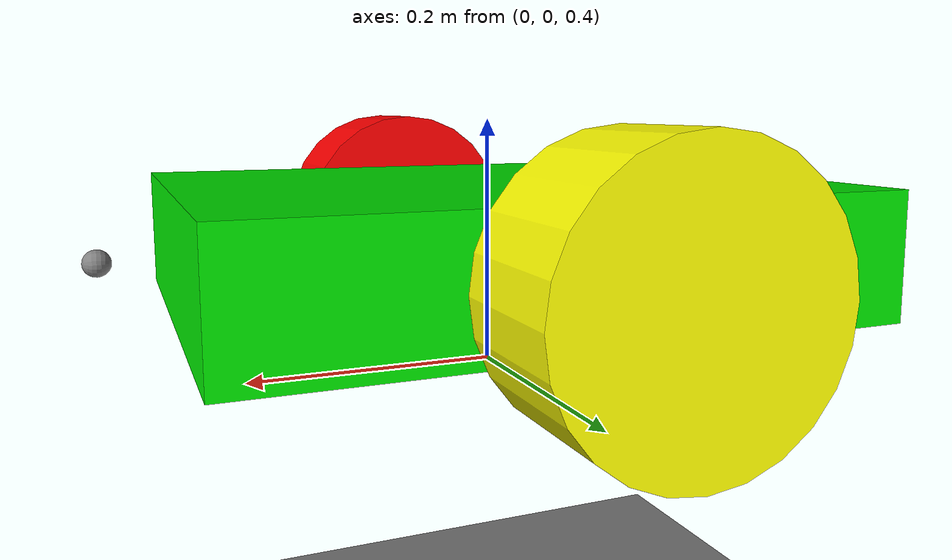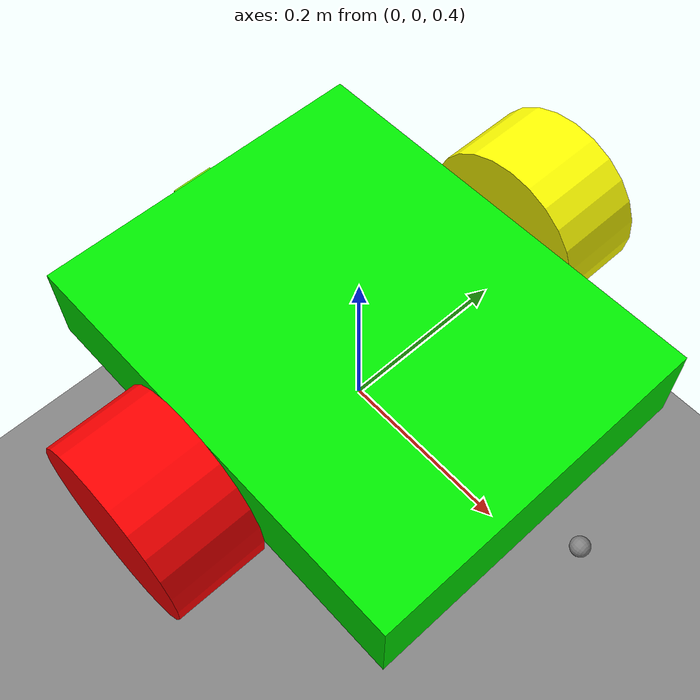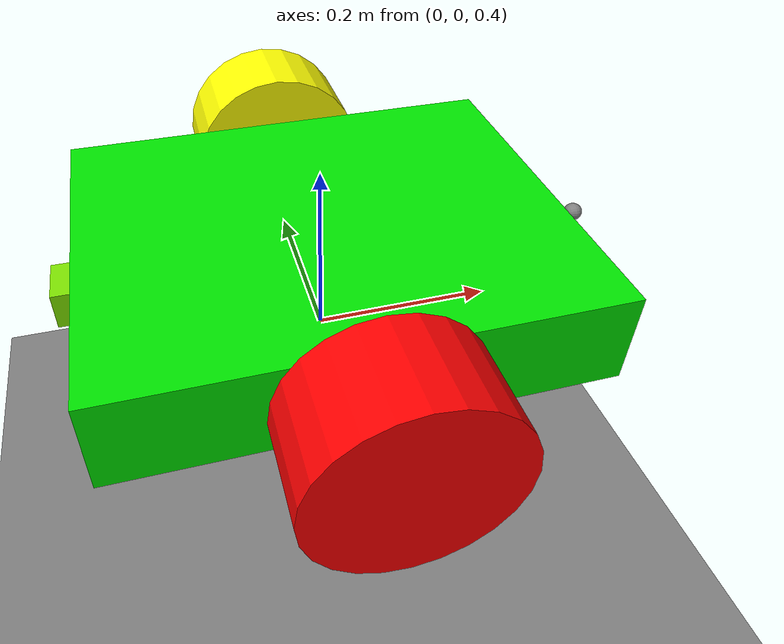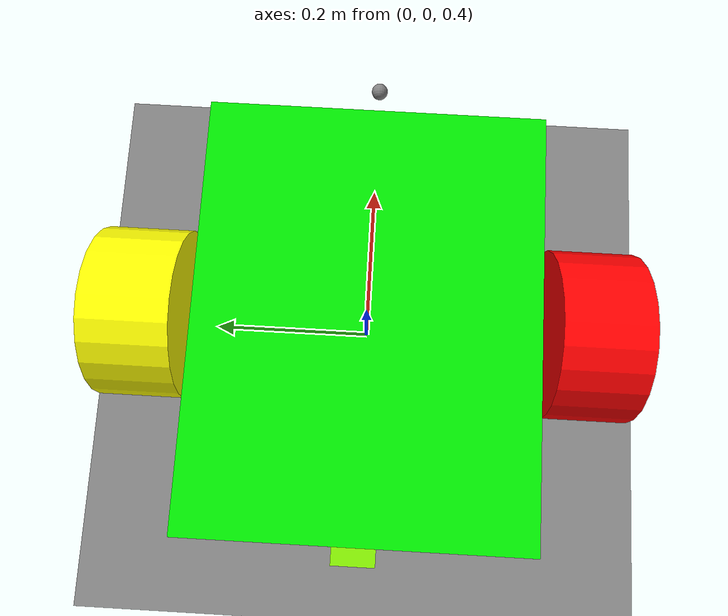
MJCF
<mujoco>
  <option timestep="0.01" integrator="RK4" gravity="0 0 -9.81">
    <flag energy="enable" contact="enable" />
  </option>
  <asset>
    <texture name="grid" type="2d" builtin="checker" width="512" height="512" rgb1=".9 .9 .9" rgb2=".1 .1 .1" />
    <material name="grid" texture="grid" texrepeat="10 10" texuniform="true" reflectance=".2" />
  </asset>

  <worldbody>
    <light diffuse=".5 .5 .5" pos="0 0 3" dir="0 0 -1" />
    <geom type="plane" size="1 1 .1" material="grid"/>

    <body name="car" pos=" 0 0 .5">
      <joint type="free"/>
      <geom type="box" size=".25 .2 .05" rgba="0 .9 0 1" mass="30"/>
      <body name="front" pos="-.25 0 0">
        <geom type="box" size=".025 .025 .02" rgba=".5 .9 0 1" mass=".01"/>
      </body>
      <site name="chassis_frame" pos="0 0 0" size=".01" />
      <site name="rangefinder_frame" pos=".3 0 0" euler="0 90 0" size=".01" />
      <body name="wheel_r" pos="0 -.26 0" euler="90 0 0">
        <joint name="wheel_r_axis" type="hinge" axis="0 0 1" damping=".03" />
        <geom type="cylinder" size=".1 .05" rgba="1 0 0 1" mass="10" />
      </body>

      <body name="wheel_l" pos="0 .26 0" euler="90 0 0">
        <joint name="wheel_l_axis" type="hinge" axis="0 0 1" damping=".03" />
        <geom type="cylinder" size=".1 .05" rgba="1 1 0 1" mass="10" />
      </body>
    </body>
  </worldbody>

  <actuator>
    <motor name="torque_wheel_r" joint="wheel_r_axis" gear="1" ctrllimited="true" ctrlrange="-10 10" />
    <motor name="torque_wheel_l" joint="wheel_l_axis" gear="1" ctrllimited="true" ctrlrange="-10 10"/>
  </actuator>

  <sensor>
    <velocimeter name="car_vel" site="chassis_frame" />
    <gyro name="car_gyro" site="chassis_frame" />
    <magnetometer name="compass" site="chassis_frame" />
  </sensor>
</mujoco>
